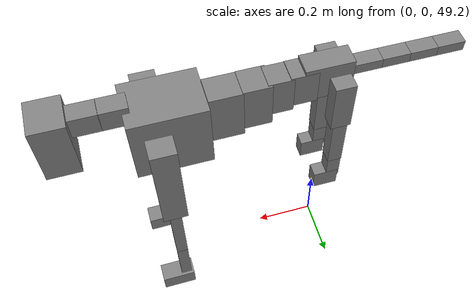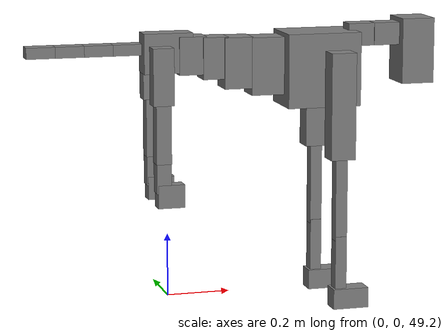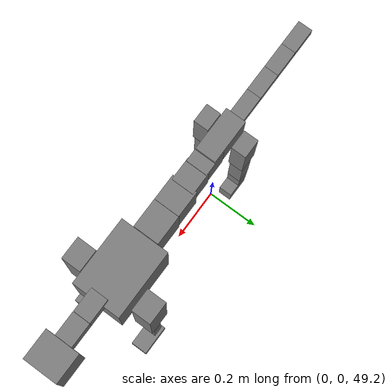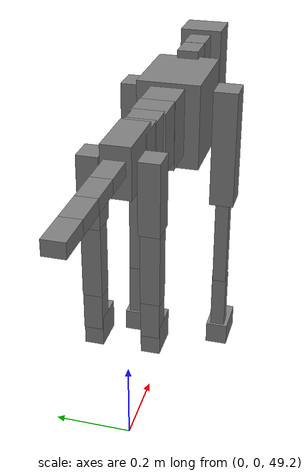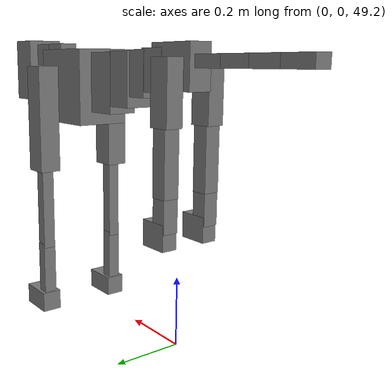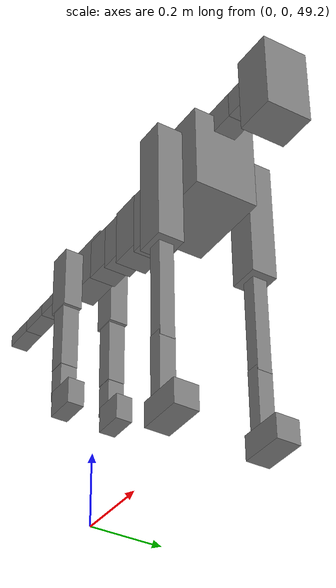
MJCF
<mujoco model="dog">

    <default>
        <joint armature="0.02" stiffness="1" damping="0.2" limited="true"/>
        <geom condim="3" friction="1 0.05 0.05" margin="0.01"/>
        <motor ctrllimited="true" ctrlrange="-1.0 1.0" forcelimited="true" gear="50"/>
    </default>

    <compiler inertiafromgeom="true" angle="radian"/>

    <option timestep="0.016" iterations="50" tolerance="1e-10" solver="Newton" jacobian="dense" cone="pyramidal"/>

    <size nconmax="20000" njmax="60000" nstack="5000000"/>
    <visual>
        <map force="0.1" zfar="30"/>
        <rgba haze="0.15 0.25 0.35 1"/>
        <quality shadowsize="2048"/>
        <global offwidth="800" offheight="800"/>
    </visual>

    <asset>
        <texture type="skybox" builtin="gradient" rgb1="0.3 0.5 0.7" rgb2="0 0 0" width="512" height="512"/>
        <texture name="texplane" type="2d" builtin="checker" rgb1=".2 .3 .4" rgb2=".1 0.15 0.2" width="512" height="512"
                 mark="cross" markrgb=".8 .8 .8"/>
        <texture name="texgeom" type="cube" builtin="flat" mark="cross" width="127" height="1278" rgb1="0.8 0.6 0.4"
                 rgb2="0.8 0.6 0.4" markrgb="1 1 1" random="0.01"/>

        <material name="matplane" reflectance="0.3" texture="texplane" texrepeat="1 1" texuniform="true"/>
        <material name="matgeom" texture="texgeom" texuniform="true" rgba="0.8 0.6 .4 1"/>
    </asset>

    <worldbody>
        <geom name="floor" pos="0 0 0" size="0 0 .25" type="plane" material="matplane" condim="3"/>

        <light directional="false" diffuse=".2 .2 .2" specular="0 0 0" pos="0 0 5" dir="0 0 -1" castshadow="false"/>
        <light mode="targetbodycom" target="torso" directional="false" diffuse=".8 .8 .8" specular="0.3 0.3 0.3"
               pos="0 0 4.0" dir="0 0 -1"/>

        <body name="root" pos="0 0 50">
            <freejoint name="root_1"/>
            <geom type="box" pos="0 0 -0.02" size="0.0774  0.0358  0.063" density="2030"/>

            <body name="spine1" pos="0.054 0 0">
                <joint name="spine1_y" axis="0 1 0" range="0 0.7" limited="true"/>
                <geom type="box" pos="0.02375 0 -0.03" size="0.04375  0.0375  0.05985" density="2030"/>

                <body name="spine2" pos="0.0612 0 0">
                    <joint name="spine2_y" axis="0 1 0" range="-0.15 0.15" limited="true"/>
                    <geom type="box" pos="0.03555  0  -0.04" size="0.04055  0.039  0.06615" density="2030"/>

                    <body name="spine3" pos="0.0730 0 0">
                        <joint name="spine3_y" axis="0 1 0" range="-0.15 0.15" limited="true"/>
                        <geom type="box" pos="0.03555  0  -0.057" size="0.04555  0.0445  0.081" density="2030"/>

                        <body name="spine4" pos="0.0780 0 0">
                            <joint name="spine4_y" axis="0 1 0" range="-0.15 0.15" limited="true"/>
                            <geom type="box" pos="0.05265  0  -0.07" size="0.05265  0.045  0.09135" density="2030"/>

                            <body name="torso" pos="0.1082 0 0">
                                <joint name="torso_y" axis="0 1 0" range="-0.15 0.15" limited="true"/>
                                <geom type="box" pos="0.11925  0  -0.085" size="0.11925  0.085  0.11745"
                                      density="2030"/>

                                <body name="neck1" pos="0.2160  0   0.0180">
                                    <joint name="neck1_y" axis="0 1 0" range="-1.2  -1" limited="true"/>
                                    <geom type="box" pos="0.0423  0  0" size="0.0423  0.03  0.036" density="2325"/>

                                    <body name="neck2" pos="0.0853  0  0">
                                        <joint name="neck2_y" axis="0 1 0" range="0.1  0" limited="true"/>
                                        <geom type="box" pos="0.0423  0  0" size="0.0423  0.03  0.036" density="2325"/>

                                        <body name="head" pos="0.0853  0  0">
                                            <joint name="head_y" axis="0 1 0" range="-0.3  -0.2" limited="true"/>
                                            <geom type="box" pos="0.0531  0  -0.055" size="0.0531  0.06  0.1044"
                                                  density="4030"/>

                                        </body>
                                    </body>
                                </body>

                                <body name="front_shoulder" pos="0.156  0   -0.0480">
                                    <joint name="front_shoulder_y" axis="0 1 0" range="-1 1.5" limited="true"/>
                                    <geom type="box" pos="0 0.13 -0.1427" size="0.0401  0.0343  0.1694" density="1158"/>
                                    <geom type="box" pos="0 -0.13 -0.1427" size="0.0401  0.0343  0.1694"
                                          density="1158"/>

                                    <body name="front_elbow" pos="0  0  -0.2854">
                                        <joint name="front_elbow_y" axis="0 1 0" range="-2 0" limited="true"/>
                                        <geom type="box" pos="0 0.13 -0.1445" size="0.0191  0.0195  0.1445"
                                              density="1081"/>
                                        <geom type="box" pos="0 -0.13 -0.1445" size="0.0191  0.0195  0.1445"
                                              density="1081"/>

                                        <body name="front_wrist" pos="0  0  -0.2890">
                                            <joint name="front_wrist_y" axis="0 1 0" range="-0.2 0" limited="true"/>
                                            <geom type="box" pos="0 0.13 -0.0854" size="0.0186  0.0207  0.0986"
                                                  density="1664"/>
                                            <geom type="box" pos="0 -0.13 -0.0854" size="0.0186  0.0207  0.0986"
                                                  density="1664"/>

                                            <body name="front_finger_end" pos="0  0  -0.1708">
                                                <joint name="front_finger_y" axis="0 1 0" range="-0.4 1"
                                                       limited="true"/>
                                                <geom type="box" pos="0.0315  0.13  -0.0174"
                                                      size="0.0577  0.0315  0.0324" density="1515"/>
                                                <geom type="box" pos="0.0315  -0.13  -0.0174"
                                                      size="0.0577  0.0315  0.0324" density="1515"/>

                                            </body>

                                        </body>
                                    </body>
                                </body>

                            </body>
                        </body>
                    </body>
                </body>
            </body>

            <body name="back_hip" pos="-0.03 0 -0.018">
                <joint name="back_hip_y" axis="0 1 0" range="-1.5 0.3" limited="true"/>
                <geom type="box" pos="0 0.07 -0.0668" size="0.0331  0.0260  0.0896" density="1154"/>
                <geom type="box" pos="0 -0.07 -0.0668" size="0.0331  0.0260  0.0896" density="1154"/>

                <body name="back_knee" pos="0  0  -0.1335">
                    <joint name="back_knee_y" axis="0 1 0" range="0 2.8" limited="true"/>
                    <geom type="box" pos="0 0.07 -0.0953" size="0.0240  0.0236  0.1108" density="1227"/>
                    <geom type="box" pos="0 -0.07 -0.0953" size="0.0240  0.0236  0.1108" density="1227"/>

                    <body name="back_ankle" pos="0  0  -0.1905">
                        <joint name="back_ankle_y" axis="0 1 0" range="-2.2 0" limited="true"/>
                        <geom type="box" pos="0 0.07 -0.0483" size="0.0229  0.0229  0.0596" density="1284"/>
                        <geom type="box" pos="0 -0.07 -0.0483" size="0.0229  0.0229  0.0596" density="1284"/>

                        <body name="back_toe_end" pos="0  0  -0.0967">
                            <joint name="back_toe_y" axis="0 1 0" range="-0.4 1" limited="true"/>
                            <geom type="box" pos="0.0230  0.07  -0.0216" size="0.0423  0.0230  0.0366" density="1515"/>
                            <geom type="box" pos="0.0230  -0.07  -0.0216" size="0.0423  0.0230  0.0366" density="1515"/>

                        </body>
                    </body>
                </body>
            </body>

            <body name="tail1" pos="-0.074 0 -0.006">
                <joint name="tail1_y" axis="0 1 0" range="-0.2 0.2" limited="true"/>
                <geom type="box" pos="-0.0536  0  0" size="0.045  0.025  0.0175" density="1587"/>

                <body name="tail2" pos="-0.09 0 0">
                    <joint name="tail2_y" axis="0 1 0" range="-0.2 0.2" limited="true"/>
                    <geom type="box" pos="-0.0536  0  0" size="0.045  0.025  0.0175" density="1587"/>

                    <body name="tail3" pos="-0.09 0 0">
                        <joint name="tail3_y" axis="0 1 0" range="-0.2 0.2" limited="true"/>
                        <geom type="box" pos="-0.0536  0  0" size="0.045  0.025  0.0175" density="1587"/>

                        <body name="tail4" pos="-0.09 0 0">
                            <joint name="tail4_y" axis="0 1 0" range="-0.2 0.2" limited="true"/>
                            <geom type="box" pos="-0.0536  0  0" size="0.045  0.025  0.0175" density="1587"/>

                        </body>
                    </body>
                </body>
            </body>
        </body>
    </worldbody>

    <actuator>
        <motor joint="spine1_y" forcerange="-150 150     "/>
        <motor joint="spine2_y" forcerange="-150 150     "/>
        <motor joint="spine3_y" forcerange="-150 150     "/>
        <motor joint="spine4_y" forcerange="-150 150     "/>
        <motor joint="torso_y" forcerange="-150 150     "/>
        <motor joint="neck1_y" forcerange="-100 100       "/>
        <motor joint="neck2_y" forcerange="-100 100       "/>
        <motor joint="head_y" forcerange="-150 150       "/>
        <motor joint="front_shoulder_y" forcerange="-152.31 176.40"/>
        <motor joint="front_elbow_y" forcerange="-105.13 136.71"/>
        <motor joint="front_wrist_y" forcerange="-54.16 111.14"/>
        <motor joint="front_finger_y" forcerange="-40.24 87.74"/>
        <motor joint="back_hip_y" forcerange="-275.93 270.69"/>
        <motor joint="back_knee_y" forcerange="-252.63 291.33"/>
        <motor joint="back_angle_y" forcerange="-64.67 201.96"/>
        <motor joint="back_toe_y" forcerange="-58.42 45.96"/>
        <motor joint="tail1_y" forcerange="-50 50     "/>
        <motor joint="tail2_y" forcerange="-50 50     "/>
        <motor joint="tail3_y" forcerange="-50 50     "/>
        <motor joint="tail4_y" forcerange="-50 50     "/>
    </actuator>
</mujoco>
